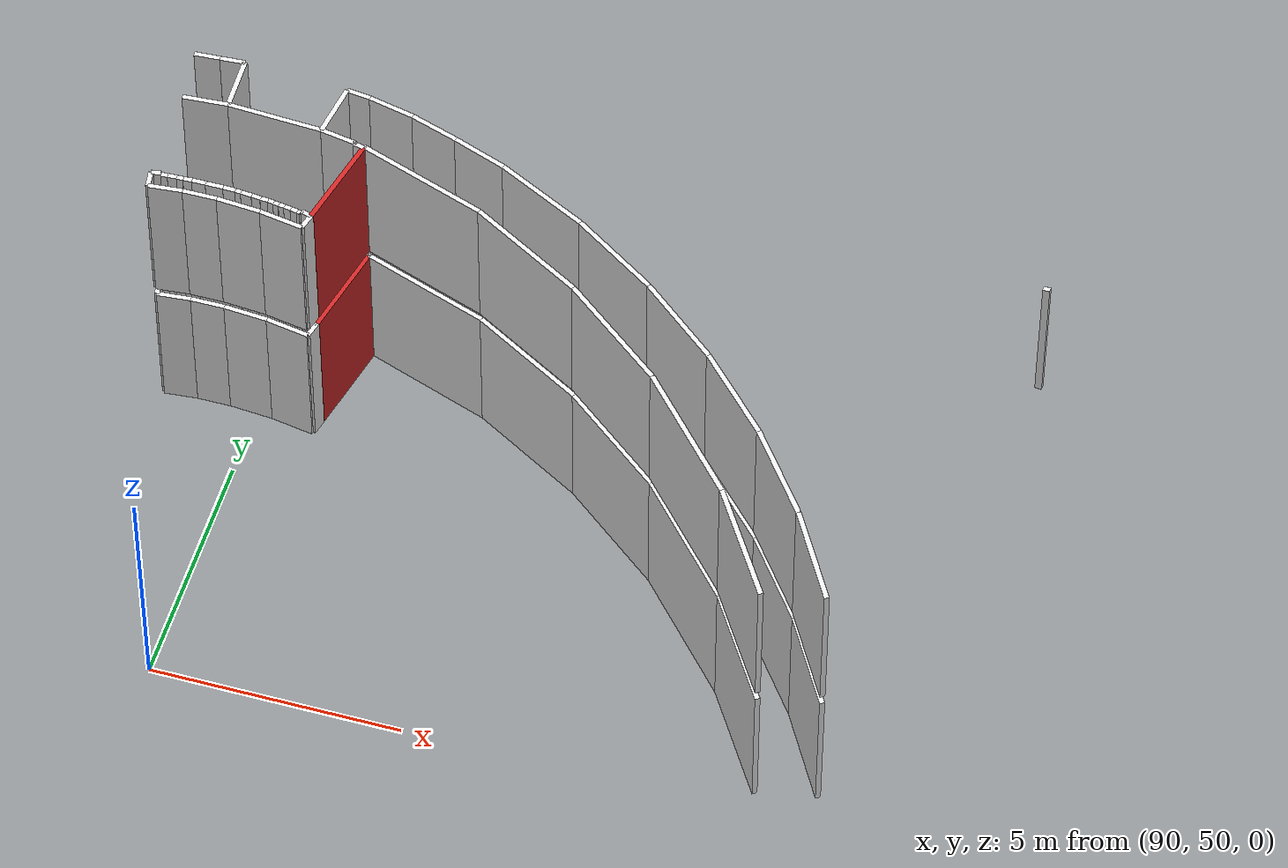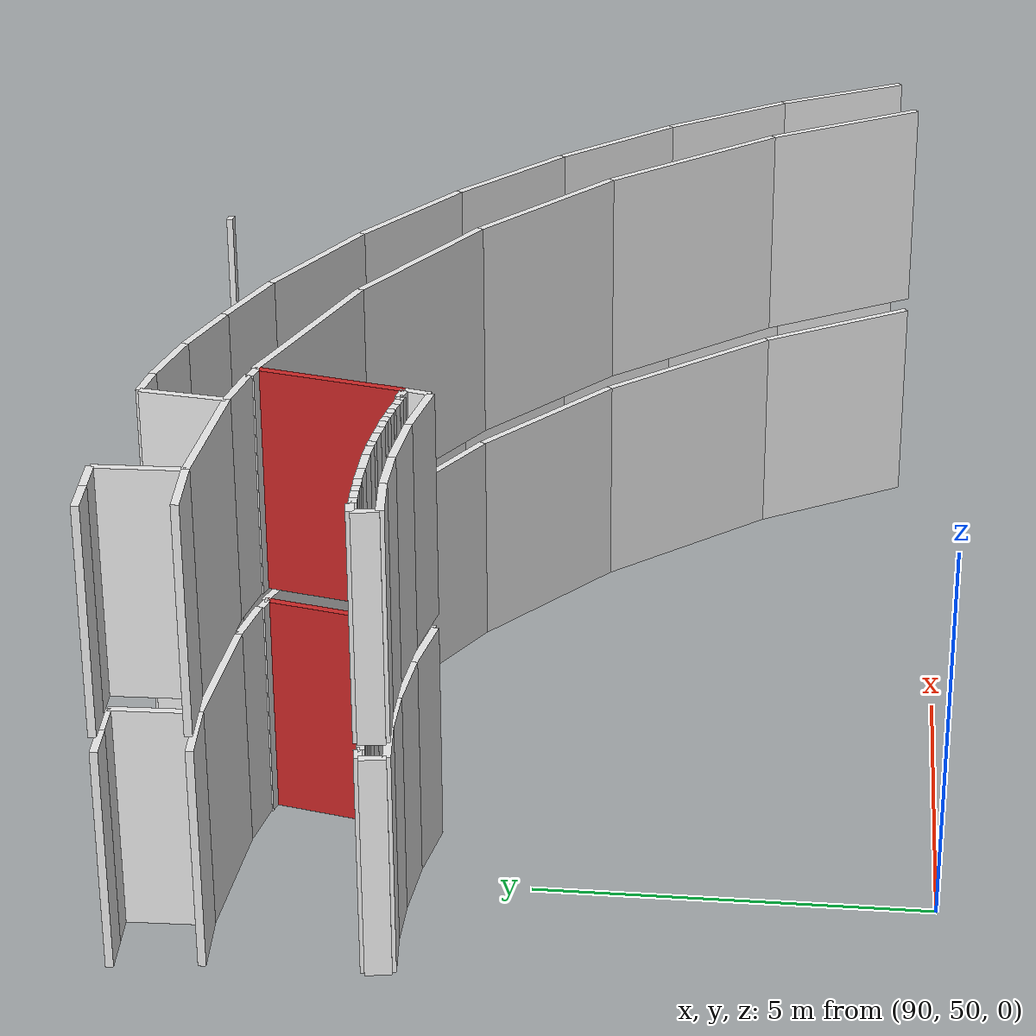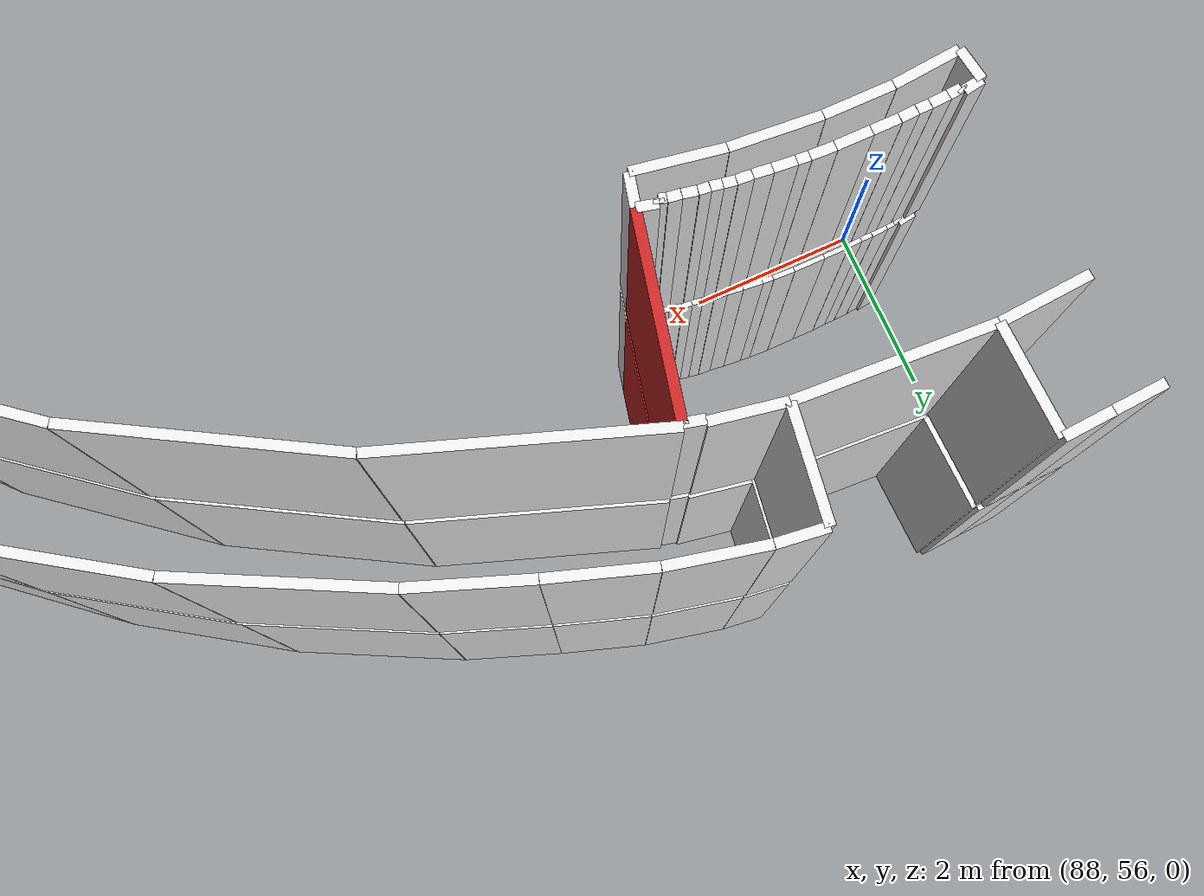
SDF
<sdf version="1.6">
 <world name="default">
  <model name="wall_91.5_57.6_0.0">
   <static>true</static>
   <pose>91.49500000002445 57.58999999985099 1.5 0 0 -1.795651920405678</pose>
   <link name="link">
    <visual name="visual">
     <geometry><box><size>1.9285486770039746 0.1 3</size></box></geometry>
     <material>
      <script><uri>file://media/materials/scripts/gazebo.material</uri><name>Gazebo/Red</name></script>
     </material>
    </visual>
   </link>
  </model>
  <model name="wall_91.1_56.7_0.0">
   <static>true</static>
   <pose>91.07500000001164 56.68000000016764 1.5 0 0 1.3258176636680326</pose>
   <link name="link">
    <visual name="visual">
     <geometry><box><size>0.04123105629457602 0.1 3</size></box></geometry>
     <material>
      <script><uri>file://media/materials/scripts/gazebo.material</uri><name>Gazebo/White</name></script>
     </material>
    </visual>
   </link>
  </model>
  <model name="wall_91.2_56.7_0.0">
   <static>true</static>
   <pose>91.18000000002212 56.675000000046566 1.5 0 0 -0.24497866442797658</pose>
   <link name="link">
    <visual name="visual">
     <geometry><box><size>0.20615528135994066 0.1 3</size></box></geometry>
     <material>
      <script><uri>file://media/materials/scripts/gazebo.material</uri><name>Gazebo/White</name></script>
     </material>
    </visual>
   </link>
  </model>
  <model name="wall_91.6_58.6_0.0">
   <static>true</static>
   <pose>91.61000000001513 58.55499999993481 1.5 0 0 2.896613989161817</pose>
   <link name="link">
    <visual name="visual">
     <geometry><box><size>0.20615528135994066 0.1 3</size></box></geometry>
     <material>
      <script><uri>file://media/materials/scripts/gazebo.material</uri><name>Gazebo/White</name></script>
     </material>
    </visual>
   </link>
  </model>
  <model name="wall_91.5_58.6_0.0">
   <static>true</static>
   <pose>91.51500000001397 58.59000000008382 1.5 0 0 1.1071487177940904</pose>
   <link name="link">
    <visual name="visual">
     <geometry><box><size>0.022360679795822902 0.1 3</size></box></geometry>
     <material>
      <script><uri>file://media/materials/scripts/gazebo.material</uri><name>Gazebo/White</name></script>
     </material>
    </visual>
   </link>
  </model>
  <model name="wall_91.2_58.7_0.0">
   <static>true</static>
   <pose>91.16500000000815 58.66500000003725 1.5 0 0 2.960499997216104</pose>
   <link name="link">
    <visual name="visual">
     <geometry><box><size>0.7218032973052274 0.1 3</size></box></geometry>
     <material>
      <script><uri>file://media/materials/scripts/gazebo.material</uri><name>Gazebo/White</name></script>
     </material>
    </visual>
   </link>
  </model>
  <model name="wall_89.9_58.8_0.0">
   <static>true</static>
   <pose>89.85999999998603 58.78499999991618 1.5 0 0 3.083762470913302</pose>
   <link name="link">
    <visual name="visual">
     <geometry><box><size>1.90318154679468 0.1 3</size></box></geometry>
     <material>
      <script><uri>file://media/materials/scripts/gazebo.material</uri><name>Gazebo/White</name></script>
     </material>
    </visual>
   </link>
  </model>
  <model name="wall_88.5_58.8_0.0">
   <static>true</static>
   <pose>88.45999999999185 58.80999999982305 1.5 0 0 -3.0750244897495804</pose>
   <link name="link">
    <visual name="visual">
     <geometry><box><size>0.9019977826712443 0.1 3</size></box></geometry>
     <material>
      <script><uri>file://media/materials/scripts/gazebo.material</uri><name>Gazebo/White</name></script>
     </material>
    </visual>
   </link>
  </model>
  <model name="wall_88.1_56.8_0.0">
   <static>true</static>
   <pose>88.14499999998952 56.83499999996275 1.5 0 0 0.15660187831921837</pose>
   <link name="link">
    <visual name="visual">
     <geometry><box><size>0.19235384065968367 0.1 3</size></box></geometry>
     <material>
      <script><uri>file://media/materials/scripts/gazebo.material</uri><name>Gazebo/White</name></script>
     </material>
    </visual>
   </link>
  </model>
  <model name="wall_88.2_56.8_0.0">
   <static>true</static>
   <pose>88.24499999999534 56.83499999996275 1.5 0 0 -1.2490457747265609</pose>
   <link name="link">
    <visual name="visual">
     <geometry><box><size>0.031622776852017344 0.1 3</size></box></geometry>
     <material>
      <script><uri>file://media/materials/scripts/gazebo.material</uri><name>Gazebo/White</name></script>
     </material>
    </visual>
   </link>
  </model>
  <model name="wall_88.3_56.8_0.0">
   <static>true</static>
   <pose>88.31500000000233 56.824999999953434 1.5 0 0 0.07677189311872727</pose>
   <link name="link">
    <visual name="visual">
     <geometry><box><size>0.13038404812726748 0.1 3</size></box></geometry>
     <material>
      <script><uri>file://media/materials/scripts/gazebo.material</uri><name>Gazebo/White</name></script>
     </material>
    </visual>
   </link>
  </model>
  <model name="wall_88.5_56.8_0.0">
   <static>true</static>
   <pose>88.47000000000116 56.83499999996275 1.5 0 0 0.05549850400992342</pose>
   <link name="link">
    <visual name="visual">
     <geometry><box><size>0.18027756375382678 0.1 3</size></box></geometry>
     <material>
      <script><uri>file://media/materials/scripts/gazebo.material</uri><name>Gazebo/White</name></script>
     </material>
    </visual>
   </link>
  </model>
  <model name="wall_88.6_56.8_0.0">
   <static>true</static>
   <pose>88.625 56.83999999985099 1.5 0 0 0.0</pose>
   <link name="link">
    <visual name="visual">
     <geometry><box><size>0.1300000000046566 0.1 3</size></box></geometry>
     <material>
      <script><uri>file://media/materials/scripts/gazebo.material</uri><name>Gazebo/White</name></script>
     </material>
    </visual>
   </link>
  </model>
  <model name="wall_88.8_56.8_0.0">
   <static>true</static>
   <pose>88.77499999999418 56.84499999997206 1.5 0 0 0.0587558241408068</pose>
   <link name="link">
    <visual name="visual">
     <geometry><box><size>0.17029386365721316 0.1 3</size></box></geometry>
     <material>
      <script><uri>file://media/materials/scripts/gazebo.material</uri><name>Gazebo/White</name></script>
     </material>
    </visual>
   </link>
  </model>
  <model name="wall_89.0_56.9_0.0">
   <static>true</static>
   <pose>88.99499999999534 56.85000000009313 1.5 0 0 0.0</pose>
   <link name="link">
    <visual name="visual">
     <geometry><box><size>0.27000000001862645 0.1 3</size></box></geometry>
     <material>
      <script><uri>file://media/materials/scripts/gazebo.material</uri><name>Gazebo/White</name></script>
     </material>
    </visual>
   </link>
  </model>
  <model name="wall_89.3_56.9_0.0">
   <static>true</static>
   <pose>89.30499999999302 56.85000000009313 1.5 0 0 0.0</pose>
   <link name="link">
    <visual name="visual">
     <geometry><box><size>0.34999999997671694 0.1 3</size></box></geometry>
     <material>
      <script><uri>file://media/materials/scripts/gazebo.material</uri><name>Gazebo/White</name></script>
     </material>
    </visual>
   </link>
  </model>
  <model name="wall_89.6_56.8_0.0">
   <static>true</static>
   <pose>89.59999999997672 56.84499999997206 1.5 0 0 -0.04164258010738671</pose>
   <link name="link">
    <visual name="visual">
     <geometry><box><size>0.24020824299006172 0.1 3</size></box></geometry>
     <material>
      <script><uri>file://media/materials/scripts/gazebo.material</uri><name>Gazebo/White</name></script>
     </material>
    </visual>
   </link>
  </model>
  <model name="wall_89.8_56.8_0.0">
   <static>true</static>
   <pose>89.77999999999884 56.83499999996275 1.5 0 0 -0.08314123000171016</pose>
   <link name="link">
    <visual name="visual">
     <geometry><box><size>0.12041594582272691 0.1 3</size></box></geometry>
     <material>
      <script><uri>file://media/materials/scripts/gazebo.material</uri><name>Gazebo/White</name></script>
     </material>
    </visual>
   </link>
  </model>
  <model name="wall_90.0_56.8_0.0">
   <static>true</static>
   <pose>89.95000000001164 56.82000000006519 1.5 0 0 -0.0906598872961675</pose>
   <link name="link">
    <visual name="visual">
     <geometry><box><size>0.22090722031760665 0.1 3</size></box></geometry>
     <material>
      <script><uri>file://media/materials/scripts/gazebo.material</uri><name>Gazebo/White</name></script>
     </material>
    </visual>
   </link>
  </model>
  <model name="wall_90.1_56.8_0.0">
   <static>true</static>
   <pose>90.14999999999418 56.800000000046566 1.5 0 0 -0.11065722128037307</pose>
   <link name="link">
    <visual name="visual">
     <geometry><box><size>0.1811077027578631 0.1 3</size></box></geometry>
     <material>
      <script><uri>file://media/materials/scripts/gazebo.material</uri><name>Gazebo/White</name></script>
     </material>
    </visual>
   </link>
  </model>
  <model name="wall_90.3_56.8_0.0">
   <static>true</static>
   <pose>90.31500000000233 56.78499999991618 1.5 0 0 -0.06656816537267114</pose>
   <link name="link">
    <visual name="visual">
     <geometry><box><size>0.15033296382306774 0.1 3</size></box></geometry>
     <material>
      <script><uri>file://media/materials/scripts/gazebo.material</uri><name>Gazebo/White</name></script>
     </material>
    </visual>
   </link>
  </model>
  <model name="wall_90.5_56.8_0.0">
   <static>true</static>
   <pose>90.45000000001164 56.769999999785796 1.5 0 0 -0.16514867757194485</pose>
   <link name="link">
    <visual name="visual">
     <geometry><box><size>0.1216552506044333 0.1 3</size></box></geometry>
     <material>
      <script><uri>file://media/materials/scripts/gazebo.material</uri><name>Gazebo/White</name></script>
     </material>
    </visual>
   </link>
  </model>
  <model name="wall_90.6_56.8_0.0">
   <static>true</static>
   <pose>90.56500000000233 56.75 1.5 0 0 -0.17985349588092345</pose>
   <link name="link">
    <visual name="visual">
     <geometry><box><size>0.11180339878127696 0.1 3</size></box></geometry>
     <material>
      <script><uri>file://media/materials/scripts/gazebo.material</uri><name>Gazebo/White</name></script>
     </material>
    </visual>
   </link>
  </model>
  <model name="wall_90.7_56.7_0.0">
   <static>true</static>
   <pose>90.67499999998836 56.735000000102445 1.5 0 0 -0.0906598893954602</pose>
   <link name="link">
    <visual name="visual">
     <geometry><box><size>0.11045361017988281 0.1 3</size></box></geometry>
     <material>
      <script><uri>file://media/materials/scripts/gazebo.material</uri><name>Gazebo/White</name></script>
     </material>
    </visual>
   </link>
  </model>
  <model name="wall_90.8_56.7_0.0">
   <static>true</static>
   <pose>90.79999999998836 56.71500000008382 1.5 0 0 -0.2110933318030475</pose>
   <link name="link">
    <visual name="visual">
     <geometry><box><size>0.14317821060349267 0.1 3</size></box></geometry>
     <material>
      <script><uri>file://media/materials/scripts/gazebo.material</uri><name>Gazebo/White</name></script>
     </material>
    </visual>
   </link>
  </model>
  <model name="wall_90.9_56.7_0.0">
   <static>true</static>
   <pose>90.93499999999767 56.69000000017695 1.5 0 0 -0.15264932852984936</pose>
   <link name="link">
    <visual name="visual">
     <geometry><box><size>0.13152946438709381 0.1 3</size></box></geometry>
     <material>
      <script><uri>file://media/materials/scripts/gazebo.material</uri><name>Gazebo/White</name></script>
     </material>
    </visual>
   </link>
  </model>
  <model name="wall_91.0_56.7_0.0">
   <static>true</static>
   <pose>91.03500000000349 56.670000000158325 1.5 0 0 -0.2782996592247629</pose>
   <link name="link">
    <visual name="visual">
     <geometry><box><size>0.07280109890463843 0.1 3</size></box></geometry>
     <material>
      <script><uri>file://media/materials/scripts/gazebo.material</uri><name>Gazebo/White</name></script>
     </material>
    </visual>
   </link>
  </model>
  <model name="wall_88.1_56.7_0.0">
   <static>true</static>
   <pose>88.07499999998254 56.65500000002794 1.5 0 0 -1.4204248986466843</pose>
   <link name="link">
    <visual name="visual">
     <geometry><box><size>0.33376638497708727 0.1 3</size></box></geometry>
     <material>
      <script><uri>file://media/materials/scripts/gazebo.material</uri><name>Gazebo/White</name></script>
     </material>
    </visual>
   </link>
  </model>
  <model name="wall_88.4_56.5_0.0">
   <static>true</static>
   <pose>88.43499999999767 56.52000000001863 1.5 0 0 0.0893139923809162</pose>
   <link name="link">
    <visual name="visual">
     <geometry><box><size>0.6726812023588774 0.1 3</size></box></geometry>
     <material>
      <script><uri>file://media/materials/scripts/gazebo.material</uri><name>Gazebo/White</name></script>
     </material>
    </visual>
   </link>
  </model>
  <model name="wall_89.1_56.5_0.0">
   <static>true</static>
   <pose>89.11000000001513 56.549999999813735 1.5 0 0 0.0</pose>
   <link name="link">
    <visual name="visual">
     <geometry><box><size>0.6799999999930151 0.1 3</size></box></geometry>
     <material>
      <script><uri>file://media/materials/scripts/gazebo.material</uri><name>Gazebo/White</name></script>
     </material>
    </visual>
   </link>
  </model>
  <model name="wall_89.9_56.5_0.0">
   <static>true</static>
   <pose>89.89000000001397 56.514999999897555 1.5 0 0 -0.07937831436985521</pose>
   <link name="link">
    <visual name="visual">
     <geometry><box><size>0.8827797007094841 0.1 3</size></box></geometry>
     <material>
      <script><uri>file://media/materials/scripts/gazebo.material</uri><name>Gazebo/White</name></script>
     </material>
    </visual>
   </link>
  </model>
  <model name="wall_90.8_56.4_0.0">
   <static>true</static>
   <pose>90.76500000001397 56.40500000002794 1.5 0 0 -0.17073521137222075</pose>
   <link name="link">
    <visual name="visual">
     <geometry><box><size>0.882836338153317 0.1 3</size></box></geometry>
     <material>
      <script><uri>file://media/materials/scripts/gazebo.material</uri><name>Gazebo/White</name></script>
     </material>
    </visual>
   </link>
  </model>
  <model name="wall_91.2_56.5_0.0">
   <static>true</static>
   <pose>91.24000000001979 56.48999999999069 1.5 0 0 1.3258176634968335</pose>
   <link name="link">
    <visual name="visual">
     <geometry><box><size>0.3298484498907329 0.1 3</size></box></geometry>
     <material>
      <script><uri>file://media/materials/scripts/gazebo.material</uri><name>Gazebo/White</name></script>
     </material>
    </visual>
   </link>
  </model>
  <model name="wall_91.7_58.5_0.0">
   <static>true</static>
   <pose>91.71000000002095 58.544999999925494 1.5 0 0 1.5707963267948966</pose>
   <link name="link">
    <visual name="visual">
     <geometry><box><size>0.03000000026077032 0.1 3</size></box></geometry>
     <material>
      <script><uri>file://media/materials/scripts/gazebo.material</uri><name>Gazebo/White</name></script>
     </material>
    </visual>
   </link>
  </model>
  <model name="wall_93.0_58.1_0.0">
   <static>true</static>
   <pose>92.99000000001979 58.10499999998137 1.5 0 0 -0.34153842534850654</pose>
   <link name="link">
    <visual name="visual">
     <geometry><box><size>2.7169284127962 0.1 3</size></box></geometry>
     <material>
      <script><uri>file://media/materials/scripts/gazebo.material</uri><name>Gazebo/White</name></script>
     </material>
    </visual>
   </link>
  </model>
  <model name="wall_95.4_57.0_0.0">
   <static>true</static>
   <pose>95.38500000000931 57.00499999988824 1.5 0 0 -0.5244421648917321</pose>
   <link name="link">
    <visual name="visual">
     <geometry><box><size>2.576237566687715 0.1 3</size></box></geometry>
     <material>
      <script><uri>file://media/materials/scripts/gazebo.material</uri><name>Gazebo/White</name></script>
     </material>
    </visual>
   </link>
  </model>
  <model name="wall_97.5_55.6_0.0">
   <static>true</static>
   <pose>97.49499999999534 55.55499999993481 1.5 0 0 -0.6802320401382534</pose>
   <link name="link">
    <visual name="visual">
     <geometry><box><size>2.559726547806053 0.1 3</size></box></geometry>
     <material>
      <script><uri>file://media/materials/scripts/gazebo.material</uri><name>Gazebo/White</name></script>
     </material>
    </visual>
   </link>
  </model>
  <model name="wall_99.5_53.7_0.0">
   <static>true</static>
   <pose>99.46499999999651 53.65500000002794 1.5 0 0 -0.8433043686299182</pose>
   <link name="link">
    <visual name="visual">
     <geometry><box><size>2.932336951954985 0.1 3</size></box></geometry>
     <material>
      <script><uri>file://media/materials/scripts/gazebo.material</uri><name>Gazebo/White</name></script>
     </material>
    </visual>
   </link>
  </model>
  <model name="wall_101.1_51.5_0.0">
   <static>true</static>
   <pose>101.09500000000116 51.5250000001397 1.5 0 0 -1.0065718003034507</pose>
   <link name="link">
    <visual name="visual">
     <geometry><box><size>2.449693858281046 0.1 3</size></box></geometry>
     <material>
      <script><uri>file://media/materials/scripts/gazebo.material</uri><name>Gazebo/White</name></script>
     </material>
    </visual>
   </link>
  </model>
  <model name="wall_102.4_51.6_0.0">
   <static>true</static>
   <pose>102.40999999997439 51.59499999997206 1.5 0 0 2.0949082599421773</pose>
   <link name="link">
    <visual name="visual">
     <geometry><box><size>1.9982242116278024 0.1 3</size></box></geometry>
     <material>
      <script><uri>file://media/materials/scripts/gazebo.material</uri><name>Gazebo/White</name></script>
     </material>
    </visual>
   </link>
  </model>
  <model name="wall_101.3_53.3_0.0">
   <static>true</static>
   <pose>101.31499999997322 53.26000000000931 1.5 0 0 2.210285420979203</pose>
   <link name="link">
    <visual name="visual">
     <geometry><box><size>1.9940160481559732 0.1 3</size></box></geometry>
     <material>
      <script><uri>file://media/materials/scripts/gazebo.material</uri><name>Gazebo/White</name></script>
     </material>
    </visual>
   </link>
  </model>
  <model name="wall_100.0_54.8_0.0">
   <static>true</static>
   <pose>100.03499999997439 54.79000000003725 1.5 0 0 2.3244030848489046</pose>
   <link name="link">
    <visual name="visual">
     <geometry><box><size>2.00212387226127 0.1 3</size></box></geometry>
     <material>
      <script><uri>file://media/materials/scripts/gazebo.material</uri><name>Gazebo/White</name></script>
     </material>
    </visual>
   </link>
  </model>
  <model name="wall_98.6_56.2_0.0">
   <static>true</static>
   <pose>98.58999999999651 56.16500000003725 1.5 0 0 2.4378629690684206</pose>
   <link name="link">
    <visual name="visual">
     <geometry><box><size>1.9936148073225644 0.1 3</size></box></geometry>
     <material>
      <script><uri>file://media/materials/scripts/gazebo.material</uri><name>Gazebo/White</name></script>
     </material>
    </visual>
   </link>
  </model>
  <model name="wall_97.0_57.4_0.0">
   <static>true</static>
   <pose>97.0 57.36499999999069 1.5 0 0 2.552201162109747</pose>
   <link name="link">
    <visual name="visual">
     <geometry><box><size>1.9969226324068652 0.1 3</size></box></geometry>
     <material>
      <script><uri>file://media/materials/scripts/gazebo.material</uri><name>Gazebo/White</name></script>
     </material>
    </visual>
   </link>
  </model>
  <model name="wall_95.3_58.4_0.0">
   <static>true</static>
   <pose>95.27999999999884 58.375 1.5 0 0 2.668996737498951</pose>
   <link name="link">
    <visual name="visual">
     <geometry><box><size>1.9991248085508437 0.1 3</size></box></geometry>
     <material>
      <script><uri>file://media/materials/scripts/gazebo.material</uri><name>Gazebo/White</name></script>
     </material>
    </visual>
   </link>
  </model>
  <model name="wall_93.9_59.0_0.0">
   <static>true</static>
   <pose>93.85500000001048 59.03000000002794 1.5 0 0 2.783846573203131</pose>
   <link name="link">
    <visual name="visual">
     <geometry><box><size>1.142322196204049 0.1 3</size></box></geometry>
     <material>
      <script><uri>file://media/materials/scripts/gazebo.material</uri><name>Gazebo/White</name></script>
     </material>
    </visual>
   </link>
  </model>
  <model name="wall_92.8_59.4_0.0">
   <static>true</static>
   <pose>92.84500000000116 59.389999999897555 1.5 0 0 2.816687535686861</pose>
   <link name="link">
    <visual name="visual">
     <geometry><box><size>1.0024470060381399 0.1 3</size></box></geometry>
     <material>
      <script><uri>file://media/materials/scripts/gazebo.material</uri><name>Gazebo/White</name></script>
     </material>
    </visual>
   </link>
  </model>
  <model name="wall_91.9_59.7_0.0">
   <static>true</static>
   <pose>91.91000000000349 59.65499999979511 1.5 0 0 2.917176644587291</pose>
   <link name="link">
    <visual name="visual">
     <geometry><box><size>0.9436630754429067 0.1 3</size></box></geometry>
     <material>
      <script><uri>file://media/materials/scripts/gazebo.material</uri><name>Gazebo/White</name></script>
     </material>
    </visual>
   </link>
  </model>
  <model name="wall_91.2_59.8_0.0">
   <static>true</static>
   <pose>91.20999999999185 59.78999999980442 1.5 0 0 3.0172376589385563</pose>
   <link name="link">
    <visual name="visual">
     <geometry><box><size>0.4837354649441195 0.1 3</size></box></geometry>
     <material>
      <script><uri>file://media/materials/scripts/gazebo.material</uri><name>Gazebo/White</name></script>
     </material>
    </visual>
   </link>
  </model>
  <model name="wall_90.9_59.3_0.0">
   <static>true</static>
   <pose>90.88999999998487 59.27499999990687 1.5 0 0 -1.7165444534999768</pose>
   <link name="link">
    <visual name="visual">
     <geometry><box><size>1.1016805343051854 0.1 3</size></box></geometry>
     <material>
      <script><uri>file://media/materials/scripts/gazebo.material</uri><name>Gazebo/White</name></script>
     </material>
    </visual>
   </link>
  </model>
  <model name="wall_88.9_59.4_0.0">
   <static>true</static>
   <pose>88.89499999998952 59.389999999897555 1.5 0 0 1.5980622952206878</pose>
   <link name="link">
    <visual name="visual">
     <geometry><box><size>1.1004090149590173 0.1 3</size></box></geometry>
     <material>
      <script><uri>file://media/materials/scripts/gazebo.material</uri><name>Gazebo/White</name></script>
     </material>
    </visual>
   </link>
  </model>
  <model name="wall_88.6_59.9_0.0">
   <static>true</static>
   <pose>88.63500000000931 59.925000000046566 1.5 0 0 -3.080444491355916</pose>
   <link name="link">
    <visual name="visual">
     <geometry><box><size>0.4909175083235264 0.1 3</size></box></geometry>
     <material>
      <script><uri>file://media/materials/scripts/gazebo.material</uri><name>Gazebo/White</name></script>
     </material>
    </visual>
   </link>
  </model>
  <model name="wall_88.1_59.9_0.0">
   <static>true</static>
   <pose>88.13500000000931 59.89500000001863 1.5 0 0 -3.08283683036559</pose>
   <link name="link">
    <visual name="visual">
     <geometry><box><size>0.5108815910024022 0.1 3</size></box></geometry>
     <material>
      <script><uri>file://media/materials/scripts/gazebo.material</uri><name>Gazebo/White</name></script>
     </material>
    </visual>
   </link>
  </model>
  <model name="wall_104.5_61.4_0.0">
   <static>true</static>
   <pose>104.47000000000116 61.43500000005588 1.5 0 0 -0.07130746321929742</pose>
   <link name="link">
    <visual name="visual">
     <geometry><box><size>0.14035668841613164 0.1 3</size></box></geometry>
     <material>
      <script><uri>file://media/materials/scripts/gazebo.material</uri><name>Gazebo/White</name></script>
     </material>
    </visual>
   </link>
  </model>
  <model name="wall_91.5_57.6_3.2">
   <static>true</static>
   <pose>91.49500000002445 57.58999999985099 4.7 0 0 -1.795651920405678</pose>
   <link name="link">
    <visual name="visual">
     <geometry><box><size>1.9285486770039746 0.1 3</size></box></geometry>
     <material>
      <script><uri>file://media/materials/scripts/gazebo.material</uri><name>Gazebo/Red</name></script>
     </material>
    </visual>
   </link>
  </model>
  <model name="wall_91.1_56.7_3.2">
   <static>true</static>
   <pose>91.07500000001164 56.68000000016764 4.7 0 0 1.3258176636680326</pose>
   <link name="link">
    <visual name="visual">
     <geometry><box><size>0.04123105629457602 0.1 3</size></box></geometry>
     <material>
      <script><uri>file://media/materials/scripts/gazebo.material</uri><name>Gazebo/White</name></script>
     </material>
    </visual>
   </link>
  </model>
  <model name="wall_91.2_56.7_3.2">
   <static>true</static>
   <pose>91.18000000002212 56.675000000046566 4.7 0 0 -0.24497866442797658</pose>
   <link name="link">
    <visual name="visual">
     <geometry><box><size>0.20615528135994066 0.1 3</size></box></geometry>
     <material>
      <script><uri>file://media/materials/scripts/gazebo.material</uri><name>Gazebo/White</name></script>
     </material>
    </visual>
   </link>
  </model>
  <model name="wall_91.6_58.6_3.2">
   <static>true</static>
   <pose>91.61000000001513 58.55499999993481 4.7 0 0 2.896613989161817</pose>
   <link name="link">
    <visual name="visual">
     <geometry><box><size>0.20615528135994066 0.1 3</size></box></geometry>
     <material>
      <script><uri>file://media/materials/scripts/gazebo.material</uri><name>Gazebo/White</name></script>
     </material>
    </visual>
   </link>
  </model>
  <model name="wall_91.5_58.6_3.2">
   <static>true</static>
   <pose>91.51500000001397 58.59000000008382 4.7 0 0 1.1071487177940904</pose>
   <link name="link">
    <visual name="visual">
     <geometry><box><size>0.022360679795822902 0.1 3</size></box></geometry>
     <material>
      <script><uri>file://media/materials/scripts/gazebo.material</uri><name>Gazebo/White</name></script>
     </material>
    </visual>
   </link>
  </model>
  <model name="wall_91.2_58.7_3.2">
   <static>true</static>
   <pose>91.16500000000815 58.66500000003725 4.7 0 0 2.960499997216104</pose>
   <link name="link">
    <visual name="visual">
     <geometry><box><size>0.7218032973052274 0.1 3</size></box></geometry>
     <material>
      <script><uri>file://media/materials/scripts/gazebo.material</uri><name>Gazebo/White</name></script>
     </material>
    </visual>
   </link>
  </model>
  <model name="wall_89.9_58.8_3.2">
   <static>true</static>
   <pose>89.85999999998603 58.78499999991618 4.7 0 0 3.083762470913302</pose>
   <link name="link">
    <visual name="visual">
     <geometry><box><size>1.90318154679468 0.1 3</size></box></geometry>
     <material>
      <script><uri>file://media/materials/scripts/gazebo.material</uri><name>Gazebo/White</name></script>
     </material>
    </visual>
   </link>
  </model>
  <model name="wall_88.5_58.8_3.2">
   <static>true</static>
   <pose>88.45999999999185 58.80999999982305 4.7 0 0 -3.0750244897495804</pose>
   <link name="link">
    <visual name="visual">
     <geometry><box><size>0.9019977826712443 0.1 3</size></box></geometry>
     <material>
      <script><uri>file://media/materials/scripts/gazebo.material</uri><name>Gazebo/White</name></script>
     </material>
    </visual>
   </link>
  </model>
  <model name="wall_88.1_56.8_3.2">
   <static>true</static>
   <pose>88.14499999998952 56.83499999996275 4.7 0 0 0.15660187831921837</pose>
   <link name="link">
    <visual name="visual">
     <geometry><box><size>0.19235384065968367 0.1 3</size></box></geometry>
     <material>
      <script><uri>file://media/materials/scripts/gazebo.material</uri><name>Gazebo/White</name></script>
     </material>
    </visual>
   </link>
  </model>
  <model name="wall_88.2_56.8_3.2">
   <static>true</static>
   <pose>88.24499999999534 56.83499999996275 4.7 0 0 -1.2490457747265609</pose>
   <link name="link">
    <visual name="visual">
     <geometry><box><size>0.031622776852017344 0.1 3</size></box></geometry>
     <material>
      <script><uri>file://media/materials/scripts/gazebo.material</uri><name>Gazebo/White</name></script>
     </material>
    </visual>
   </link>
  </model>
  <model name="wall_88.3_56.8_3.2">
   <static>true</static>
   <pose>88.31500000000233 56.824999999953434 4.7 0 0 0.07677189311872727</pose>
   <link name="link">
    <visual name="visual">
     <geometry><box><size>0.13038404812726748 0.1 3</size></box></geometry>
     <material>
      <script><uri>file://media/materials/scripts/gazebo.material</uri><name>Gazebo/White</name></script>
     </material>
    </visual>
   </link>
  </model>
  <model name="wall_88.5_56.8_3.2">
   <static>true</static>
   <pose>88.47000000000116 56.83499999996275 4.7 0 0 0.05549850400992342</pose>
   <link name="link">
    <visual name="visual">
     <geometry><box><size>0.18027756375382678 0.1 3</size></box></geometry>
     <material>
      <script><uri>file://media/materials/scripts/gazebo.material</uri><name>Gazebo/White</name></script>
     </material>
    </visual>
   </link>
  </model>
  <model name="wall_88.6_56.8_3.2">
   <static>true</static>
   <pose>88.625 56.83999999985099 4.7 0 0 0.0</pose>
   <link name="link">
    <visual name="visual">
     <geometry><box><size>0.1300000000046566 0.1 3</size></box></geometry>
     <material>
      <script><uri>file://media/materials/scripts/gazebo.material</uri><name>Gazebo/White</name></script>
     </material>
    </visual>
   </link>
  </model>
  <model name="wall_88.8_56.8_3.2">
   <static>true</static>
   <pose>88.77499999999418 56.84499999997206 4.7 0 0 0.0587558241408068</pose>
   <link name="link">
    <visual name="visual">
     <geometry><box><size>0.17029386365721316 0.1 3</size></box></geometry>
     <material>
      <script><uri>file://media/materials/scripts/gazebo.material</uri><name>Gazebo/White</name></script>
     </material>
    </visual>
   </link>
  </model>
  <model name="wall_89.0_56.9_3.2">
   <static>true</static>
   <pose>88.99499999999534 56.85000000009313 4.7 0 0 0.0</pose>
   <link name="link">
    <visual name="visual">
     <geometry><box><size>0.27000000001862645 0.1 3</size></box></geometry>
     <material>
      <script><uri>file://media/materials/scripts/gazebo.material</uri><name>Gazebo/White</name></script>
     </material>
    </visual>
   </link>
  </model>
  <model name="wall_89.3_56.9_3.2">
   <static>true</static>
   <pose>89.30499999999302 56.85000000009313 4.7 0 0 0.0</pose>
   <link name="link">
    <visual name="visual">
     <geometry><box><size>0.34999999997671694 0.1 3</size></box></geometry>
     <material>
      <script><uri>file://media/materials/scripts/gazebo.material</uri><name>Gazebo/White</name></script>
     </material>
    </visual>
   </link>
  </model>
  <model name="wall_89.6_56.8_3.2">
   <static>true</static>
   <pose>89.59999999997672 56.84499999997206 4.7 0 0 -0.04164258010738671</pose>
   <link name="link">
    <visual name="visual">
     <geometry><box><size>0.24020824299006172 0.1 3</size></box></geometry>
     <material>
      <script><uri>file://media/materials/scripts/gazebo.material</uri><name>Gazebo/White</name></script>
     </material>
    </visual>
   </link>
  </model>
  <model name="wall_89.8_56.8_3.2">
   <static>true</static>
   <pose>89.77999999999884 56.83499999996275 4.7 0 0 -0.08314123000171016</pose>
   <link name="link">
    <visual name="visual">
     <geometry><box><size>0.12041594582272691 0.1 3</size></box></geometry>
     <material>
      <script><uri>file://media/materials/scripts/gazebo.material</uri><name>Gazebo/White</name></script>
     </material>
    </visual>
   </link>
  </model>
  <model name="wall_90.0_56.8_3.2">
   <static>true</static>
   <pose>89.95000000001164 56.82000000006519 4.7 0 0 -0.0906598872961675</pose>
   <link name="link">
    <visual name="visual">
     <geometry><box><size>0.22090722031760665 0.1 3</size></box></geometry>
     <material>
      <script><uri>file://media/materials/scripts/gazebo.material</uri><name>Gazebo/White</name></script>
     </material>
    </visual>
   </link>
  </model>
  <model name="wall_90.1_56.8_3.2">
   <static>true</static>
   <pose>90.14999999999418 56.800000000046566 4.7 0 0 -0.11065722128037307</pose>
   <link name="link">
    <visual name="visual">
     <geometry><box><size>0.1811077027578631 0.1 3</size></box></geometry>
     <material>
      <script><uri>file://media/materials/scripts/gazebo.material</uri><name>Gazebo/White</name></script>
     </material>
    </visual>
   </link>
  </model>
  <model name="wall_90.3_56.8_3.2">
   <static>true</static>
   <pose>90.31500000000233 56.78499999991618 4.7 0 0 -0.06656816537267114</pose>
   <link name="link">
    <visual name="visual">
     <geometry><box><size>0.15033296382306774 0.1 3</size></box></geometry>
     <material>
      <script><uri>file://media/materials/scripts/gazebo.material</uri><name>Gazebo/White</name></script>
     </material>
    </visual>
   </link>
  </model>
  <model name="wall_90.5_56.8_3.2">
   <static>true</static>
   <pose>90.45000000001164 56.769999999785796 4.7 0 0 -0.16514867757194485</pose>
   <link name="link">
    <visual name="visual">
     <geometry><box><size>0.1216552506044333 0.1 3</size></box></geometry>
     <material>
      <script><uri>file://media/materials/scripts/gazebo.material</uri><name>Gazebo/White</name></script>
     </material>
    </visual>
   </link>
  </model>
  <model name="wall_90.6_56.8_3.2">
   <static>true</static>
   <pose>90.56500000000233 56.75 4.7 0 0 -0.17985349588092345</pose>
   <link name="link">
    <visual name="visual">
     <geometry><box><size>0.11180339878127696 0.1 3</size></box></geometry>
     <material>
      <script><uri>file://media/materials/scripts/gazebo.material</uri><name>Gazebo/White</name></script>
     </material>
    </visual>
   </link>
  </model>
  <model name="wall_90.7_56.7_3.2">
   <static>true</static>
   <pose>90.67499999998836 56.735000000102445 4.7 0 0 -0.0906598893954602</pose>
   <link name="link">
    <visual name="visual">
     <geometry><box><size>0.11045361017988281 0.1 3</size></box></geometry>
     <material>
      <script><uri>file://media/materials/scripts/gazebo.material</uri><name>Gazebo/White</name></script>
     </material>
    </visual>
   </link>
  </model>
  <model name="wall_90.8_56.7_3.2">
   <static>true</static>
   <pose>90.79999999998836 56.71500000008382 4.7 0 0 -0.2110933318030475</pose>
   <link name="link">
    <visual name="visual">
     <geometry><box><size>0.14317821060349267 0.1 3</size></box></geometry>
     <material>
      <script><uri>file://media/materials/scripts/gazebo.material</uri><name>Gazebo/White</name></script>
     </material>
    </visual>
   </link>
  </model>
  <model name="wall_90.9_56.7_3.2">
   <static>true</static>
   <pose>90.93499999999767 56.69000000017695 4.7 0 0 -0.15264932852984936</pose>
   <link name="link">
    <visual name="visual">
     <geometry><box><size>0.13152946438709381 0.1 3</size></box></geometry>
     <material>
      <script><uri>file://media/materials/scripts/gazebo.material</uri><name>Gazebo/White</name></script>
     </material>
    </visual>
   </link>
  </model>
  <model name="wall_91.0_56.7_3.2">
   <static>true</static>
   <pose>91.03500000000349 56.670000000158325 4.7 0 0 -0.2782996592247629</pose>
   <link name="link">
    <visual name="visual">
     <geometry><box><size>0.07280109890463843 0.1 3</size></box></geometry>
     <material>
      <script><uri>file://media/materials/scripts/gazebo.material</uri><name>Gazebo/White</name></script>
     </material>
    </visual>
   </link>
  </model>
  <model name="wall_88.1_56.7_3.2">
   <static>true</static>
   <pose>88.07499999998254 56.65500000002794 4.7 0 0 -1.4204248986466843</pose>
   <link name="link">
    <visual name="visual">
     <geometry><box><size>0.33376638497708727 0.1 3</size></box></geometry>
     <material>
      <script><uri>file://media/materials/scripts/gazebo.material</uri><name>Gazebo/White</name></script>
     </material>
    </visual>
   </link>
  </model>
  <model name="wall_88.4_56.5_3.2">
   <static>true</static>
   <pose>88.43499999999767 56.52000000001863 4.7 0 0 0.0893139923809162</pose>
   <link name="link">
    <visual name="visual">
     <geometry><box><size>0.6726812023588774 0.1 3</size></box></geometry>
     <material>
      <script><uri>file://media/materials/scripts/gazebo.material</uri><name>Gazebo/White</name></script>
     </material>
    </visual>
   </link>
  </model>
  <model name="wall_89.1_56.5_3.2">
   <static>true</static>
   <pose>89.11000000001513 56.549999999813735 4.7 0 0 0.0</pose>
   <link name="link">
    <visual name="visual">
     <geometry><box><size>0.6799999999930151 0.1 3</size></box></geometry>
     <material>
      <script><uri>file://media/materials/scripts/gazebo.material</uri><name>Gazebo/White</name></script>
     </material>
    </visual>
   </link>
  </model>
  <model name="wall_89.9_56.5_3.2">
   <static>true</static>
   <pose>89.89000000001397 56.514999999897555 4.7 0 0 -0.07937831436985521</pose>
   <link name="link">
    <visual name="visual">
     <geometry><box><size>0.8827797007094841 0.1 3</size></box></geometry>
     <material>
      <script><uri>file://media/materials/scripts/gazebo.material</uri><name>Gazebo/White</name></script>
     </material>
    </visual>
   </link>
  </model>
  <model name="wall_90.8_56.4_3.2">
   <static>true</static>
   <pose>90.76500000001397 56.40500000002794 4.7 0 0 -0.17073521137222075</pose>
   <link name="link">
    <visual name="visual">
     <geometry><box><size>0.882836338153317 0.1 3</size></box></geometry>
     <material>
      <script><uri>file://media/materials/scripts/gazebo.material</uri><name>Gazebo/White</name></script>
     </material>
    </visual>
   </link>
  </model>
  <model name="wall_91.2_56.5_3.2">
   <static>true</static>
   <pose>91.24000000001979 56.48999999999069 4.7 0 0 1.3258176634968335</pose>
   <link name="link">
    <visual name="visual">
     <geometry><box><size>0.3298484498907329 0.1 3</size></box></geometry>
     <material>
      <script><uri>file://media/materials/scripts/gazebo.material</uri><name>Gazebo/White</name></script>
     </material>
    </visual>
   </link>
  </model>
  <model name="wall_91.7_58.5_3.2">
   <static>true</static>
   <pose>91.71000000002095 58.544999999925494 4.7 0 0 1.5707963267948966</pose>
   <link name="link">
    <visual name="visual">
     <geometry><box><size>0.03000000026077032 0.1 3</size></box></geometry>
     <material>
      <script><uri>file://media/materials/scripts/gazebo.material</uri><name>Gazebo/White</name></script>
     </material>
    </visual>
   </link>
  </model>
  <model name="wall_93.0_58.1_3.2">
   <static>true</static>
   <pose>92.99000000001979 58.10499999998137 4.7 0 0 -0.34153842534850654</pose>
   <link name="link">
    <visual name="visual">
     <geometry><box><size>2.7169284127962 0.1 3</size></box></geometry>
     <material>
      <script><uri>file://media/materials/scripts/gazebo.material</uri><name>Gazebo/White</name></script>
     </material>
    </visual>
   </link>
  </model>
  <model name="wall_95.4_57.0_3.2">
   <static>true</static>
   <pose>95.38500000000931 57.00499999988824 4.7 0 0 -0.5244421648917321</pose>
   <link name="link">
    <visual name="visual">
     <geometry><box><size>2.576237566687715 0.1 3</size></box></geometry>
     <material>
      <script><uri>file://media/materials/scripts/gazebo.material</uri><name>Gazebo/White</name></script>
     </material>
    </visual>
   </link>
  </model>
  <model name="wall_97.5_55.6_3.2">
   <static>true</static>
   <pose>97.49499999999534 55.55499999993481 4.7 0 0 -0.6802320401382534</pose>
   <link name="link">
    <visual name="visual">
     <geometry><box><size>2.559726547806053 0.1 3</size></box></geometry>
     <material>
      <script><uri>file://media/materials/scripts/gazebo.material</uri><name>Gazebo/White</name></script>
     </material>
    </visual>
   </link>
  </model>
  <model name="wall_99.5_53.7_3.2">
   <static>true</static>
   <pose>99.46499999999651 53.65500000002794 4.7 0 0 -0.8433043686299182</pose>
   <link name="link">
    <visual name="visual">
     <geometry><box><size>2.932336951954985 0.1 3</size></box></geometry>
     <material>
      <script><uri>file://media/materials/scripts/gazebo.material</uri><name>Gazebo/White</name></script>
     </material>
    </visual>
   </link>
  </model>
  <model name="wall_101.1_51.5_3.2">
   <static>true</static>
   <pose>101.09500000000116 51.5250000001397 4.7 0 0 -1.0065718003034507</pose>
   <link name="link">
    <visual name="visual">
     <geometry><box><size>2.449693858281046 0.1 3</size></box></geometry>
     <material>
      <script><uri>file://media/materials/scripts/gazebo.material</uri><name>Gazebo/White</name></script>
     </material>
    </visual>
   </link>
  </model>
  <model name="wall_102.4_51.6_3.2">
   <static>true</static>
   <pose>102.40999999997439 51.59499999997206 4.7 0 0 2.0949082599421773</pose>
   <link name="link">
    <visual name="visual">
     <geometry><box><size>1.9982242116278024 0.1 3</size></box></geometry>
     <material>
      <script><uri>file://media/materials/scripts/gazebo.material</uri><name>Gazebo/White</name></script>
     </material>
    </visual>
   </link>
  </model>
  <model name="wall_101.3_53.3_3.2">
   <static>true</static>
   <pose>101.31499999997322 53.26000000000931 4.7 0 0 2.210285420979203</pose>
   <link name="link">
    <visual name="visual">
     <geometry><box><size>1.9940160481559732 0.1 3</size></box></geometry>
     <material>
      <script><uri>file://media/materials/scripts/gazebo.material</uri><name>Gazebo/White</name></script>
     </material>
    </visual>
   </link>
  </model>
  <model name="wall_100.0_54.8_3.2">
   <static>true</static>
   <pose>100.03499999997439 54.79000000003725 4.7 0 0 2.3244030848489046</pose>
   <link name="link">
    <visual name="visual">
     <geometry><box><size>2.00212387226127 0.1 3</size></box></geometry>
     <material>
      <script><uri>file://media/materials/scripts/gazebo.material</uri><name>Gazebo/White</name></script>
     </material>
    </visual>
   </link>
  </model>
  <model name="wall_98.6_56.2_3.2">
   <static>true</static>
   <pose>98.58999999999651 56.16500000003725 4.7 0 0 2.4378629690684206</pose>
   <link name="link">
    <visual name="visual">
     <geometry><box><size>1.9936148073225644 0.1 3</size></box></geometry>
     <material>
      <script><uri>file://media/materials/scripts/gazebo.material</uri><name>Gazebo/White</name></script>
     </material>
    </visual>
   </link>
  </model>
  <model name="wall_97.0_57.4_3.2">
   <static>true</static>
   <pose>97.0 57.36499999999069 4.7 0 0 2.552201162109747</pose>
   <link name="link">
    <visual name="visual">
     <geometry><box><size>1.9969226324068652 0.1 3</size></box></geometry>
     <material>
      <script><uri>file://media/materials/scripts/gazebo.material</uri><name>Gazebo/White</name></script>
     </material>
    </visual>
   </link>
  </model>
  <model name="wall_95.3_58.4_3.2">
   <static>true</static>
   <pose>95.27999999999884 58.375 4.7 0 0 2.668996737498951</pose>
   <link name="link">
    <visual name="visual">
     <geometry><box><size>1.9991248085508437 0.1 3</size></box></geometry>
     <material>
      <script><uri>file://media/materials/scripts/gazebo.material</uri><name>Gazebo/White</name></script>
     </material>
    </visual>
   </link>
  </model>
  <model name="wall_93.9_59.0_3.2">
   <static>true</static>
   <pose>93.85500000001048 59.03000000002794 4.7 0 0 2.783846573203131</pose>
   <link name="link">
    <visual name="visual">
     <geometry><box><size>1.142322196204049 0.1 3</size></box></geometry>
     <material>
      <script><uri>file://media/materials/scripts/gazebo.material</uri><name>Gazebo/White</name></script>
     </material>
    </visual>
   </link>
  </model>
  <model name="wall_92.8_59.4_3.2">
   <static>true</static>
   <pose>92.84500000000116 59.389999999897555 4.7 0 0 2.816687535686861</pose>
   <link name="link">
    <visual name="visual">
     <geometry><box><size>1.0024470060381399 0.1 3</size></box></geometry>
     <material>
      <script><uri>file://media/materials/scripts/gazebo.material</uri><name>Gazebo/White</name></script>
     </material>
    </visual>
   </link>
  </model>
  <model name="wall_91.9_59.7_3.2">
   <static>true</static>
   <pose>91.91000000000349 59.65499999979511 4.7 0 0 2.917176644587291</pose>
   <link name="link">
    <visual name="visual">
     <geometry><box><size>0.9436630754429067 0.1 3</size></box></geometry>
     <material>
      <script><uri>file://media/materials/scripts/gazebo.material</uri><name>Gazebo/White</name></script>
     </material>
    </visual>
   </link>
  </model>
  <model name="wall_91.2_59.8_3.2">
   <static>true</static>
   <pose>91.20999999999185 59.78999999980442 4.7 0 0 3.0172376589385563</pose>
   <link name="link">
    <visual name="visual">
     <geometry><box><size>0.4837354649441195 0.1 3</size></box></geometry>
     <material>
      <script><uri>file://media/materials/scripts/gazebo.material</uri><name>Gazebo/White</name></script>
     </material>
    </visual>
   </link>
  </model>
  <model name="wall_90.9_59.3_3.2">
   <static>true</static>
   <pose>90.88999999998487 59.27499999990687 4.7 0 0 -1.7165444534999768</pose>
   <link name="link">
    <visual name="visual">
     <geometry><box><size>1.1016805343051854 0.1 3</size></box></geometry>
     <material>
      <script><uri>file://media/materials/scripts/gazebo.material</uri><name>Gazebo/White</name></script>
     </material>
    </visual>
   </link>
  </model>
  <model name="wall_88.9_59.4_3.2">
   <static>true</static>
   <pose>88.89499999998952 59.389999999897555 4.7 0 0 1.5980622952206878</pose>
   <link name="link">
    <visual name="visual">
     <geometry><box><size>1.1004090149590173 0.1 3</size></box></geometry>
     <material>
      <script><uri>file://media/materials/scripts/gazebo.material</uri><name>Gazebo/White</name></script>
     </material>
    </visual>
   </link>
  </model>
  <model name="wall_88.6_59.9_3.2">
   <static>true</static>
   <pose>88.63500000000931 59.925000000046566 4.7 0 0 -3.080444491355916</pose>
   <link name="link">
    <visual name="visual">
     <geometry><box><size>0.4909175083235264 0.1 3</size></box></geometry>
     <material>
      <script><uri>file://media/materials/scripts/gazebo.material</uri><name>Gazebo/White</name></script>
     </material>
    </visual>
   </link>
  </model>
  <model name="wall_88.1_59.9_3.2">
   <static>true</static>
   <pose>88.13500000000931 59.89500000001863 4.7 0 0 -3.08283683036559</pose>
   <link name="link">
    <visual name="visual">
     <geometry><box><size>0.5108815910024022 0.1 3</size></box></geometry>
     <material>
      <script><uri>file://media/materials/scripts/gazebo.material</uri><name>Gazebo/White</name></script>
     </material>
    </visual>
   </link>
  </model>
 </world>
</sdf>
